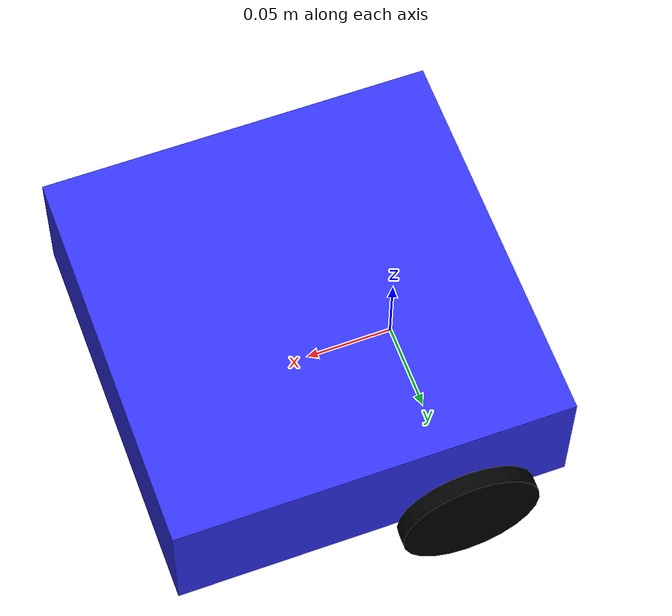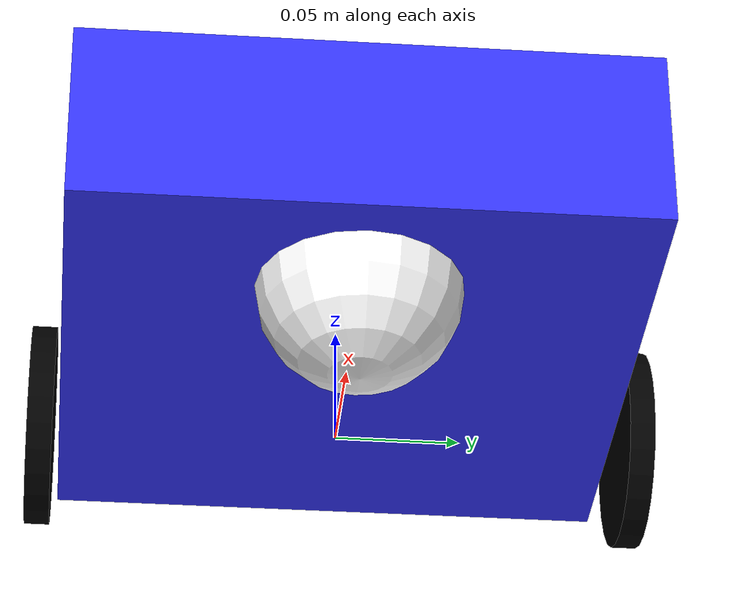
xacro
<?xml version="1.0"?>
<robot xmlns:xacro="http://www.ros.org/wiki/xacro"  >

    <xacro:include filename="inertial_macros.xacro"/>

    <material name="white">
        <color rgba="1 1 1 1" />
    </material>

    <material name="orange">
        <color rgba="1 0.3 0.1 1" />
    </material>

    <material name="blue">
        <color rgba="0.2 0.2 1 1" />
    </material>

    <material name="black">
        <color rgba="0 0 0 1" />
    </material>

    <material name="red">
        <color rgba="1 0 0 0" />
    </material>

        <material name="green">
        <color rgba="0 1 0 0" />
    </material>

    <!-- BASE LINK -->

    <link name="base_link">

    </link>

    <!-- BASE_FOOTPRINT LINK -->

    <joint name="base_footprint_joint" type="fixed">
        <parent link="base_link"/>
        <child link="base_footprint"/>
        <origin xyz="0 0 0" rpy="0 0 0"/>
    </joint>

    <link name="base_footprint">

    </link>

    <!-- CHASSIS LINK -->
    <joint name="chassis_joint" type="fixed">
        <parent link="base_link"/>
        <child link="chassis"/>
        <origin xyz="-0.05999 0 0"/>
    </joint>

    <link name="chassis">
        <visual>
            <origin xyz="0.1125 0 0.037505"/>
            <geometry>
                <box size="0.225 0.225 0.07501"/>
            </geometry>
            <material name="blue"/>
        </visual>
        <collision>
            <origin xyz="0.1125 0 0.037505"/>
            <geometry>
                <box size="0.225 0.225 0.07501"/>
            </geometry>
        </collision>
        <xacro:inertial_box mass="0.5" x="0.225" y="0.225" z="0.07501">
            <origin xyz="0.1125 0 0.037505" rpy="0 0 0"/>
        </xacro:inertial_box>
    </link>

    <gazebo reference="chassis">
        <material>Gazebo/Blue</material>
    </gazebo>

    <!-- LEFT WHEEL LINK -->

    <joint name="left_wheel_joint" type="continuous">
        <parent link="base_link"/>
        <child link="left_wheel"/>
        <origin xyz="0 0.11975 0" rpy ="-${pi/2} 0 0"/>
        <axis xyz="0 0 1"/>
    </joint>

    <link name="left_wheel">
        <visual>
            <geometry>
                <cylinder radius="0.04" length="0.01"/>
            </geometry>
            <material name="black"/>
        </visual>
        <collision>
            <geometry>
                <cylinder radius="0.04" length="0.01"/>
            </geometry>
        </collision>
        <xacro:inertial_cylinder mass="0.1" length="0.01" radius="0.04">
            <origin xyz="0 0 0" rpy="0 0 0"/>
        </xacro:inertial_cylinder>
    </link>

    <gazebo reference="left_wheel">
        <material>Gazebo/Black</material>
    </gazebo>

    <!-- RIGHT WHEEL LINK -->

    <joint name="right_wheel_joint" type="continuous">
        <parent link="base_link"/>
        <child link="right_wheel"/>
        <origin xyz="0 -0.11975 0" rpy ="${pi/2} 0 0"/>
        <axis xyz="0 0 -1"/>
    </joint>

    <link name="right_wheel">
        <visual>
            <geometry>
                <cylinder radius="0.04" length="0.01"/>
            </geometry>
            <material name="black"/>
        </visual>
        <collision>
            <geometry>
                <cylinder radius="0.04" length="0.01"/>
            </geometry>
        </collision>
        <xacro:inertial_cylinder mass="0.1" length="0.01" radius="0.04">
            <origin xyz="0 0 0" rpy="0 0 0"/>
        </xacro:inertial_cylinder>
    </link>

    <gazebo reference="right_wheel">
        <material>Gazebo/Black</material>
    </gazebo>

    <!-- CASTER WHEEL LINK -->

    <joint name="caster_wheel_joint" type="fixed">
        <parent link="chassis"/>
        <child link="caster_wheel"/>
        <origin xyz="0.16875 0 0"/>
    </joint>

    <link name="caster_wheel">
        <visual>
            <geometry>
                <sphere radius="0.04"/>
            </geometry>
            <material name="white"/>
        </visual>
        <collision>
            <geometry>
                <sphere radius="0.04"/>
            </geometry>
        </collision>
        <!-- Ensure that you validate the masses -->
        <xacro:inertial_sphere mass="0.1" radius="0.04">
            <origin xyz="0 0 0" rpy="0 0 0"/>
        </xacro:inertial_sphere>
    </link>

    <gazebo reference="caster_wheel">
        <material>Gazebo/White</material>
        <mu1 value="0.001"/>
        <mu2 value="0.001"/>
    </gazebo>

</robot>
